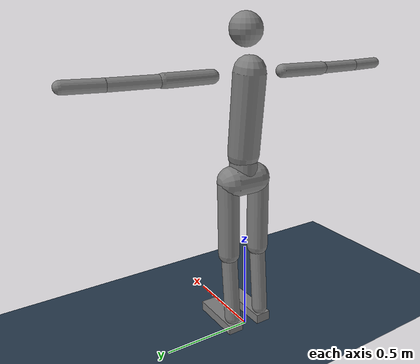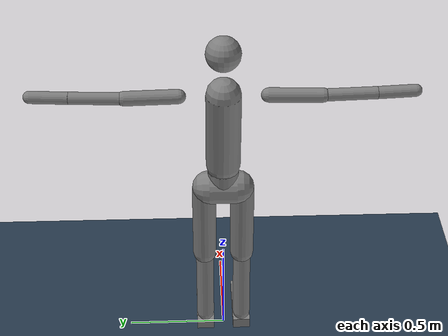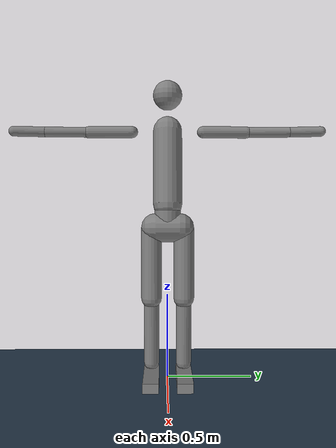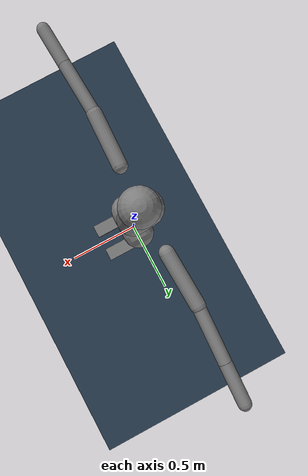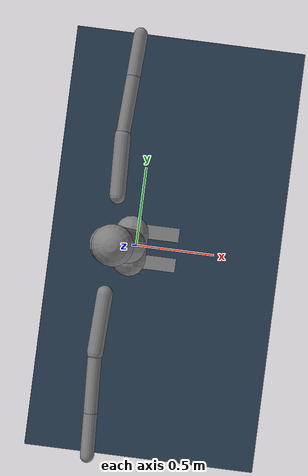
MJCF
<mujoco model="athlete">
  <compiler angle="degree" inertiafromgeom="auto" autolimits="true" />
  <option timestep="0.005" iterations="10" ls_iterations="10" integrator="implicitfast">
    <flag eulerdamp="disable" />
  </option>
  <default>
    <geom contype="1" conaffinity="1" condim="3" friction="1.0 0.005 0.0001" density="1000" margin="0" />
    <joint limited="true" />
    <position ctrllimited="true" />
  </default>
  <asset>
    <texture name="grid" type="2d" builtin="checker" rgb1=".2 .3 .4" rgb2=".1 .15 .2" width="300" height="300" />
    <material name="grid" texture="grid" texrepeat="8 8" reflectance="0" />
  </asset>
  <worldbody>
    <light pos="0 0 3" dir="0 0 -1" directional="true" />
    <geom name="floor" type="plane" size="0 0 0.05" material="grid" contype="1" conaffinity="1" friction="1.0 0.005 0.0001" />
    <body name="pelvis" pos="0.0110 0.0000 0.9000">
      <freejoint name="root" />
      <site name="imu" pos="0 0 0" size="0.01" />
      <geom name="pelvis_geom" type="capsule" fromto="0.0000 -0.0700 0.0000 0.0000 0.0700 0.0000" size="0.0850" mass="6.4833" />
      <geom name="pelvis_up" type="capsule" fromto="0.0000 0.0000 0.0000 0.0000 0.0000 0.0990" size="0.0765" mass="4.1667" />
      <body name="torso__link0" pos="0.0000 0.0000 0.1190">
        <inertial pos="0 0 0" mass="0.02" diaginertia="1e-4 1e-4 1e-4" />
        <joint name="abdomen_z" type="hinge" axis="0 0 1" range="-45 45" damping="0.5" armature="0.08" stiffness="0" />
        <body name="torso__link1" pos="0 0 0">
          <inertial pos="0 0 0" mass="0.02" diaginertia="1e-4 1e-4 1e-4" />
          <joint name="abdomen_y" type="hinge" axis="0 1 0" range="-60 30" damping="0.5" armature="0.08" stiffness="0" />
          <body name="torso" pos="0 0 0">
            <joint name="abdomen_x" type="hinge" axis="1 0 0" range="-35 35" damping="0.5" armature="0.08" stiffness="0" />
            <geom name="torso_geom" type="capsule" fromto="0.0000 0.0000 0.0200 -0.0580 0.0000 0.4520" size="0.0850" mass="26.6250" />
            <geom name="head_geom" type="sphere" pos="-0.0270 0.0000 0.6525" size="0.0850" mass="6.0750" />
            <body name="upper_arm_l__link0" pos="-0.0500 0.2100 0.4440">
              <inertial pos="0 0 0" mass="0.02" diaginertia="1e-4 1e-4 1e-4" />
              <joint name="shoulder_x_l" type="hinge" axis="1 0 0" range="-170 30" damping="0.5" armature="0.03" stiffness="0" />
              <body name="upper_arm_l" pos="0 0 0">
                <joint name="shoulder_z_l" type="hinge" axis="0 0 1" range="-90 90" damping="0.5" armature="0.03" stiffness="0" />
                <geom name="upper_arm_l_geom" type="capsule" fromto="0.0000 0.0000 0.0000 -0.0100 0.2560 0.0000" size="0.0350" mass="2.1000" />
                <body name="forearm_l" pos="-0.0100 0.2560 0.0000">
                  <joint name="elbow_l" type="hinge" axis="0 0 1" range="-150 0" damping="0.5" armature="0.02" stiffness="0" />
                  <geom name="forearm_l_geom" type="capsule" fromto="0.0000 0.0000 0.0000 0.0130 0.2560 0.0000" size="0.0300" mass="1.2000" />
                  <geom name="hand_l_geom" type="capsule" fromto="0.0130 0.2560 0.0000 0.0220 0.4370 0.0030" size="0.0300" mass="0.4500" />
                </body>
              </body>
            </body>
            <body name="upper_arm_r__link0" pos="-0.0500 -0.2100 0.4440">
              <inertial pos="0 0 0" mass="0.02" diaginertia="1e-4 1e-4 1e-4" />
              <joint name="shoulder_x_r" type="hinge" axis="1 0 0" range="-30 170" damping="0.5" armature="0.03" stiffness="0" />
              <body name="upper_arm_r" pos="0 0 0">
                <joint name="shoulder_z_r" type="hinge" axis="0 0 1" range="-90 90" damping="0.5" armature="0.03" stiffness="0" />
                <geom name="upper_arm_r_geom" type="capsule" fromto="0.0000 0.0000 0.0000 -0.0100 -0.2560 0.0000" size="0.0350" mass="2.1000" />
                <body name="forearm_r" pos="-0.0100 -0.2560 0.0000">
                  <joint name="elbow_r" type="hinge" axis="0 0 1" range="0 150" damping="0.5" armature="0.02" stiffness="0" />
                  <geom name="forearm_r_geom" type="capsule" fromto="0.0000 0.0000 0.0000 0.0130 -0.2560 0.0000" size="0.0300" mass="1.2000" />
                  <geom name="hand_r_geom" type="capsule" fromto="0.0130 -0.2560 0.0000 0.0220 -0.4370 0.0030" size="0.0300" mass="0.4500" />
                </body>
              </body>
            </body>
          </body>
        </body>
      </body>
      <body name="thigh_l__link0" pos="0.0000 0.0960 -0.0100">
        <inertial pos="0 0 0" mass="0.02" diaginertia="1e-4 1e-4 1e-4" />
        <joint name="hip_x_l" type="hinge" axis="1 0 0" range="-40 40" damping="0.5" armature="0.1" stiffness="0" />
        <body name="thigh_l__link1" pos="0 0 0">
          <inertial pos="0 0 0" mass="0.02" diaginertia="1e-4 1e-4 1e-4" />
          <joint name="hip_z_l" type="hinge" axis="0 0 1" range="-35 35" damping="0.5" armature="0.1" stiffness="0" />
          <body name="thigh_l" pos="0 0 0">
            <joint name="hip_y_l" type="hinge" axis="0 1 0" range="-120 30" damping="0.5" armature="0.1" stiffness="0" />
            <geom name="thigh_l_geom" type="capsule" fromto="0.0000 0.0000 0.0000 0.0040 0.0000 -0.4090" size="0.0600" mass="7.5000" />
            <body name="shin_l" pos="0.0040 0.0000 -0.4090">
              <joint name="knee_l" type="hinge" axis="0 1 0" range="0 150" damping="0.5" armature="0.1" stiffness="0" />
              <geom name="shin_l_geom" type="capsule" fromto="0.0000 0.0000 0.0000 -0.0280 0.0000 -0.3960" size="0.0450" mass="3.4875" />
              <body name="foot_l__link0" pos="-0.0280 0.0000 -0.3960">
                <inertial pos="0 0 0" mass="0.02" diaginertia="1e-4 1e-4 1e-4" />
                <joint name="ankle_y_l" type="hinge" axis="0 1 0" range="-20 50" damping="0.5" armature="0.03" stiffness="0" />
                <body name="foot_l" pos="0 0 0">
                  <joint name="ankle_x_l" type="hinge" axis="1 0 0" range="-25 25" damping="0.5" armature="0.03" stiffness="0" />
                  <geom name="foot_l_geom" type="box" pos="0.1185 0.0000 -0.0570" size="0.1585 0.0450 0.0280" mass="1.0875" friction="1.0 0.005 0.0001" />
                  <site name="foot_l_site" pos="0.1185 0.0000 -0.0570" size="0.01" />
                </body>
              </body>
            </body>
          </body>
        </body>
      </body>
      <body name="thigh_r__link0" pos="0.0000 -0.0960 -0.0100">
        <inertial pos="0 0 0" mass="0.02" diaginertia="1e-4 1e-4 1e-4" />
        <joint name="hip_x_r" type="hinge" axis="1 0 0" range="-40 40" damping="0.5" armature="0.1" stiffness="0" />
        <body name="thigh_r__link1" pos="0 0 0">
          <inertial pos="0 0 0" mass="0.02" diaginertia="1e-4 1e-4 1e-4" />
          <joint name="hip_z_r" type="hinge" axis="0 0 1" range="-35 35" damping="0.5" armature="0.1" stiffness="0" />
          <body name="thigh_r" pos="0 0 0">
            <joint name="hip_y_r" type="hinge" axis="0 1 0" range="-120 30" damping="0.5" armature="0.1" stiffness="0" />
            <geom name="thigh_r_geom" type="capsule" fromto="0.0000 0.0000 0.0000 0.0040 0.0000 -0.4090" size="0.0600" mass="7.5000" />
            <body name="shin_r" pos="0.0040 0.0000 -0.4090">
              <joint name="knee_r" type="hinge" axis="0 1 0" range="0 150" damping="0.5" armature="0.1" stiffness="0" />
              <geom name="shin_r_geom" type="capsule" fromto="0.0000 0.0000 0.0000 -0.0280 0.0000 -0.3960" size="0.0450" mass="3.4875" />
              <body name="foot_r__link0" pos="-0.0280 0.0000 -0.3960">
                <inertial pos="0 0 0" mass="0.02" diaginertia="1e-4 1e-4 1e-4" />
                <joint name="ankle_y_r" type="hinge" axis="0 1 0" range="-20 50" damping="0.5" armature="0.03" stiffness="0" />
                <body name="foot_r" pos="0 0 0">
                  <joint name="ankle_x_r" type="hinge" axis="1 0 0" range="-25 25" damping="0.5" armature="0.03" stiffness="0" />
                  <geom name="foot_r_geom" type="box" pos="0.1185 0.0000 -0.0570" size="0.1585 0.0450 0.0280" mass="1.0875" friction="1.0 0.005 0.0001" />
                  <site name="foot_r_site" pos="0.1185 0.0000 -0.0570" size="0.01" />
                </body>
              </body>
            </body>
          </body>
        </body>
      </body>
    </body>
  </worldbody>
  <contact>
    <exclude body1="pelvis" body2="torso" />
    <exclude body1="pelvis" body2="thigh_l" />
    <exclude body1="thigh_l" body2="shin_l" />
    <exclude body1="shin_l" body2="foot_l" />
    <exclude body1="torso" body2="upper_arm_l" />
    <exclude body1="upper_arm_l" body2="forearm_l" />
    <exclude body1="pelvis" body2="thigh_r" />
    <exclude body1="thigh_r" body2="shin_r" />
    <exclude body1="shin_r" body2="foot_r" />
    <exclude body1="torso" body2="upper_arm_r" />
    <exclude body1="upper_arm_r" body2="forearm_r" />
  </contact>
  <actuator>
    <position name="abdomen_z" joint="abdomen_z" kp="450.0" kv="21.0" forcerange="-170.0 170.0" ctrlrange="-0.7854 0.7854" />
    <position name="abdomen_y" joint="abdomen_y" kp="450.0" kv="21.0" forcerange="-170.0 170.0" ctrlrange="-1.0472 0.5236" />
    <position name="abdomen_x" joint="abdomen_x" kp="450.0" kv="21.0" forcerange="-170.0 170.0" ctrlrange="-0.6109 0.6109" />
    <position name="shoulder_x_l" joint="shoulder_x_l" kp="50.0" kv="2.5" forcerange="-60.0 60.0" ctrlrange="-2.9671 0.5236" />
    <position name="shoulder_z_l" joint="shoulder_z_l" kp="50.0" kv="2.5" forcerange="-60.0 60.0" ctrlrange="-1.5708 1.5708" />
    <position name="elbow_l" joint="elbow_l" kp="40.0" kv="2.0" forcerange="-50.0 50.0" ctrlrange="-2.6180 0.0000" />
    <position name="shoulder_x_r" joint="shoulder_x_r" kp="50.0" kv="2.5" forcerange="-60.0 60.0" ctrlrange="-0.5236 2.9671" />
    <position name="shoulder_z_r" joint="shoulder_z_r" kp="50.0" kv="2.5" forcerange="-60.0 60.0" ctrlrange="-1.5708 1.5708" />
    <position name="elbow_r" joint="elbow_r" kp="40.0" kv="2.0" forcerange="-50.0 50.0" ctrlrange="0.0000 2.6180" />
    <position name="hip_x_l" joint="hip_x_l" kp="600.0" kv="30.0" forcerange="-240.0 240.0" ctrlrange="-0.6981 0.6981" />
    <position name="hip_z_l" joint="hip_z_l" kp="600.0" kv="30.0" forcerange="-240.0 240.0" ctrlrange="-0.6109 0.6109" />
    <position name="hip_y_l" joint="hip_y_l" kp="600.0" kv="30.0" forcerange="-240.0 240.0" ctrlrange="-2.0944 0.5236" />
    <position name="knee_l" joint="knee_l" kp="600.0" kv="30.0" forcerange="-260.0 260.0" ctrlrange="0.0000 2.6180" />
    <position name="ankle_y_l" joint="ankle_y_l" kp="750.0" kv="30.0" forcerange="-220.0 220.0" ctrlrange="-0.3491 0.8727" />
    <position name="ankle_x_l" joint="ankle_x_l" kp="240.0" kv="12.0" forcerange="-60.0 60.0" ctrlrange="-0.4363 0.4363" />
    <position name="hip_x_r" joint="hip_x_r" kp="600.0" kv="30.0" forcerange="-240.0 240.0" ctrlrange="-0.6981 0.6981" />
    <position name="hip_z_r" joint="hip_z_r" kp="600.0" kv="30.0" forcerange="-240.0 240.0" ctrlrange="-0.6109 0.6109" />
    <position name="hip_y_r" joint="hip_y_r" kp="600.0" kv="30.0" forcerange="-240.0 240.0" ctrlrange="-2.0944 0.5236" />
    <position name="knee_r" joint="knee_r" kp="600.0" kv="30.0" forcerange="-260.0 260.0" ctrlrange="0.0000 2.6180" />
    <position name="ankle_y_r" joint="ankle_y_r" kp="750.0" kv="30.0" forcerange="-220.0 220.0" ctrlrange="-0.3491 0.8727" />
    <position name="ankle_x_r" joint="ankle_x_r" kp="240.0" kv="12.0" forcerange="-60.0 60.0" ctrlrange="-0.4363 0.4363" />
  </actuator>
  <keyframe>
    <key name="stand" qpos="0 0 0.9020 1 0 0 0 0.0000 0.0000 0.0000 -1.3614 0.0000 -0.6109 1.3614 0.0000 0.6109 0.0000 0.0000 0.0524 0.0000 -0.0524 0.0000 0.0000 0.0000 0.0524 0.0000 -0.0524 0.0000" />
  </keyframe>
</mujoco>
